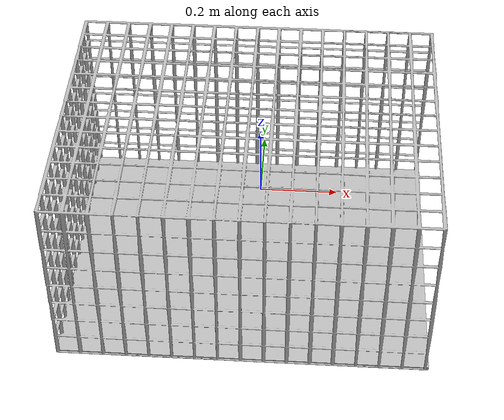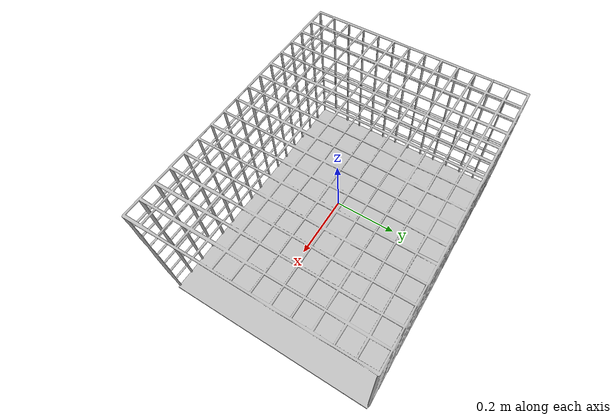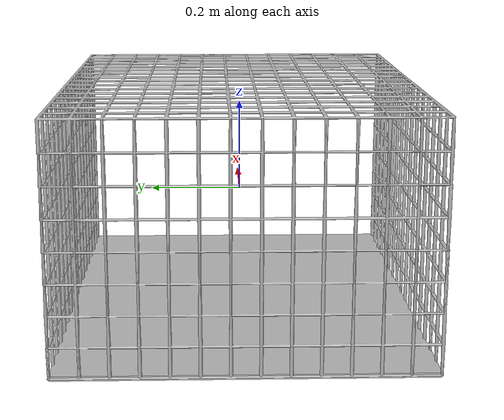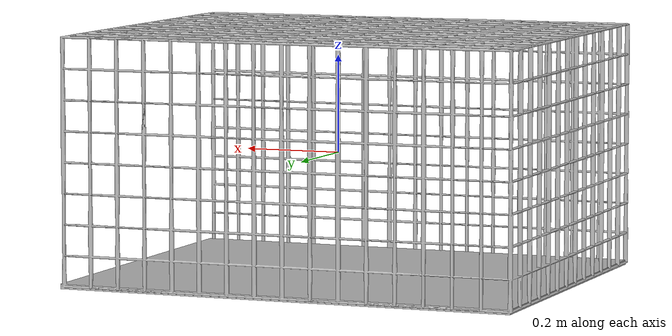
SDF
<?xml version="1.0" ?>
<sdf version="1.5">
<model name="cage">
  <static>true</static>
  <link name="cage_link">

  <inertial>
    <mass>1</mass>
    <pose>0 0 0 0 0 0</pose>
  </inertial>

  <visual name="cage">
    <pose>0 0 0 0 0 0</pose>
    <geometry>
      <mesh><uri>model://cage/meshes/cage.dae</uri><scale>1 1 1</scale></mesh>
    </geometry>
  </visual>

  <collision name="cage">
    <pose>0 0 0 0 0 0</pose>
    <geometry>
      <mesh><uri>model://cage/meshes/cage.dae</uri><scale>1 1 1</scale></mesh>
    </geometry>
  </collision>

  </link>
</model>
</sdf>
